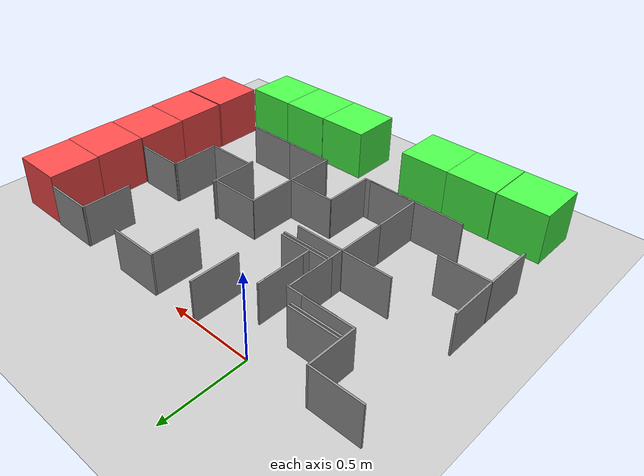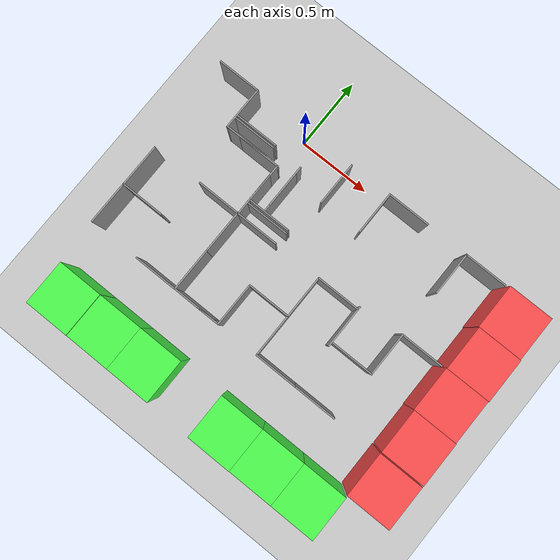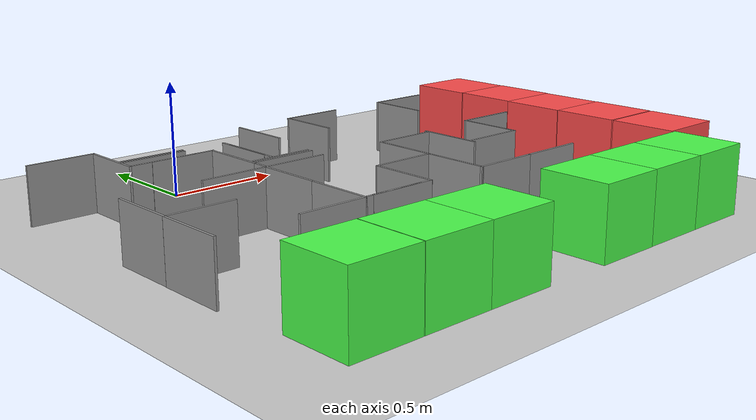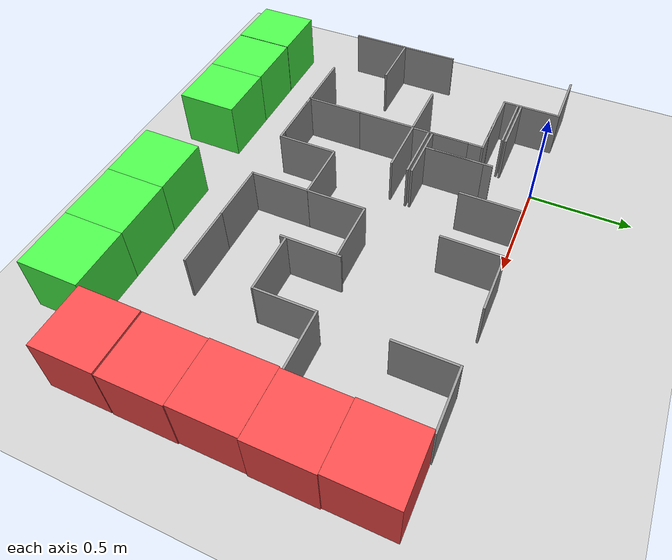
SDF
<sdf version="1.6">
 <world name="default">
  <model name="ground_plane">
   <static>1</static>
   <link name="link">
    <collision name="collision">
     <geometry><plane><normal>0 0 1</normal><size>100 100</size></plane></geometry>
     <surface><friction><ode><mu>100</mu><mu2>50</mu2></ode></friction></surface>
    </collision>
    <visual name="visual">
     <cast_shadows>0</cast_shadows>
     <geometry><plane><normal>0 0 1</normal><size>100 100</size></plane></geometry>
     <material>
      <script><uri>file://media/materials/scripts/gazebo.material</uri><name>Gazebo/Grey</name></script>
     </material>
    </visual>
   </link>
  </model>
  <model name="Box_Red_clone_3">
   <link name="link_0">
    <inertial>
     <mass>1</mass>
     <inertia>
      <ixx>0.166667</ixx>
      <ixy>0</ixy>
      <ixz>0</ixz>
      <iyy>0.166667</iyy>
      <iyz>0</iyz>
      <izz>0.166667</izz>
     </inertia>
    </inertial>
    <visual name="visual">
     <geometry><box><size>0.3 0.3 0.3</size></box></geometry>
     <material>
      <lighting>1</lighting>
      <script><uri>file://media/materials/scripts/gazebo.material</uri><name>Gazebo/Grey</name></script>
      <ambient>1 0.3 0.3 1</ambient>
      <diffuse>0.7 0.7 0.7 1</diffuse>
      <specular>0.01 0.01 0.01 1</specular>
      <emissive>0 0 0 1</emissive>
      <shader type="vertex"><normal_map>__default__</normal_map></shader>
     </material>
    </visual>
    <collision name="collision">
     <geometry><box><size>0.3 0.3 0.3</size></box></geometry>
     <surface>
      <friction>
       <ode><mu>1</mu><mu2>1</mu2><fdir1>0 0 0</fdir1><slip1>0</slip1><slip2>0</slip2></ode>
       <torsional>
        <coefficient>1</coefficient>
        <patch_radius>0</patch_radius>
        <surface_radius>0</surface_radius>
        <use_patch_radius>1</use_patch_radius>
        <ode><slip>0</slip></ode>
       </torsional>
      </friction>
      <bounce><restitution_coefficient>0</restitution_coefficient><threshold>1e+06</threshold></bounce>
      <contact>
       <collide_without_contact>0</collide_without_contact>
       <collide_without_contact_bitmask>1</collide_without_contact_bitmask>
       <collide_bitmask>1</collide_bitmask>
       <ode>
        <soft_cfm>0</soft_cfm>
        <soft_erp>0.2</soft_erp>
        <kp>1e+13</kp>
        <kd>1</kd>
        <max_vel>0.01</max_vel>
        <min_depth>0</min_depth>
       </ode>
       <bullet>
        <split_impulse>1</split_impulse>
        <split_impulse_penetration_threshold>-0.01</split_impulse_penetration_threshold>
        <soft_cfm>0</soft_cfm>
        <soft_erp>0.2</soft_erp>
        <kp>1e+13</kp>
        <kd>1</kd>
       </bullet>
      </contact>
     </surface>
    </collision>
   </link>
   <static>0</static>
   <pose>1.65506 -0.140171 0.15 0 -0 0.000201</pose>
  </model>
  <model name="Box_Red_clone_4">
   <link name="link_0">
    <inertial>
     <mass>1</mass>
     <inertia>
      <ixx>0.166667</ixx>
      <ixy>0</ixy>
      <ixz>0</ixz>
      <iyy>0.166667</iyy>
      <iyz>0</iyz>
      <izz>0.166667</izz>
     </inertia>
    </inertial>
    <visual name="visual">
     <geometry><box><size>0.3 0.3 0.3</size></box></geometry>
     <material>
      <lighting>1</lighting>
      <script><uri>file://media/materials/scripts/gazebo.material</uri><name>Gazebo/Grey</name></script>
      <ambient>1 0.3 0.3 1</ambient>
      <diffuse>0.7 0.7 0.7 1</diffuse>
      <specular>0.01 0.01 0.01 1</specular>
      <emissive>0 0 0 1</emissive>
      <shader type="vertex"><normal_map>__default__</normal_map></shader>
     </material>
    </visual>
    <collision name="collision">
     <geometry><box><size>0.3 0.3 0.3</size></box></geometry>
     <surface>
      <friction>
       <ode><mu>1</mu><mu2>1</mu2><fdir1>0 0 0</fdir1><slip1>0</slip1><slip2>0</slip2></ode>
       <torsional>
        <coefficient>1</coefficient>
        <patch_radius>0</patch_radius>
        <surface_radius>0</surface_radius>
        <use_patch_radius>1</use_patch_radius>
        <ode><slip>0</slip></ode>
       </torsional>
      </friction>
      <bounce><restitution_coefficient>0</restitution_coefficient><threshold>1e+06</threshold></bounce>
      <contact>
       <collide_without_contact>0</collide_without_contact>
       <collide_without_contact_bitmask>1</collide_without_contact_bitmask>
       <collide_bitmask>1</collide_bitmask>
       <ode>
        <soft_cfm>0</soft_cfm>
        <soft_erp>0.2</soft_erp>
        <kp>1e+13</kp>
        <kd>1</kd>
        <max_vel>0.01</max_vel>
        <min_depth>0</min_depth>
       </ode>
       <bullet>
        <split_impulse>1</split_impulse>
        <split_impulse_penetration_threshold>-0.01</split_impulse_penetration_threshold>
        <soft_cfm>0</soft_cfm>
        <soft_erp>0.2</soft_erp>
        <kp>1e+13</kp>
        <kd>1</kd>
       </bullet>
      </contact>
     </surface>
    </collision>
   </link>
   <static>0</static>
   <pose>1.65976 -0.440197 0.15 0 -0 0.000127</pose>
  </model>
  <model name="Box_Red_clone_5">
   <link name="link_0">
    <inertial>
     <mass>1</mass>
     <inertia>
      <ixx>0.166667</ixx>
      <ixy>0</ixy>
      <ixz>0</ixz>
      <iyy>0.166667</iyy>
      <iyz>0</iyz>
      <izz>0.166667</izz>
     </inertia>
    </inertial>
    <visual name="visual">
     <geometry><box><size>0.3 0.3 0.3</size></box></geometry>
     <material>
      <lighting>1</lighting>
      <script><uri>file://media/materials/scripts/gazebo.material</uri><name>Gazebo/Grey</name></script>
      <ambient>1 0.3 0.3 1</ambient>
      <diffuse>0.7 0.7 0.7 1</diffuse>
      <specular>0.01 0.01 0.01 1</specular>
      <emissive>0 0 0 1</emissive>
      <shader type="vertex"><normal_map>__default__</normal_map></shader>
     </material>
    </visual>
    <collision name="collision">
     <geometry><box><size>0.3 0.3 0.3</size></box></geometry>
     <surface>
      <friction>
       <ode><mu>1</mu><mu2>1</mu2><fdir1>0 0 0</fdir1><slip1>0</slip1><slip2>0</slip2></ode>
       <torsional>
        <coefficient>1</coefficient>
        <patch_radius>0</patch_radius>
        <surface_radius>0</surface_radius>
        <use_patch_radius>1</use_patch_radius>
        <ode><slip>0</slip></ode>
       </torsional>
      </friction>
      <bounce><restitution_coefficient>0</restitution_coefficient><threshold>1e+06</threshold></bounce>
      <contact>
       <collide_without_contact>0</collide_without_contact>
       <collide_without_contact_bitmask>1</collide_without_contact_bitmask>
       <collide_bitmask>1</collide_bitmask>
       <ode>
        <soft_cfm>0</soft_cfm>
        <soft_erp>0.2</soft_erp>
        <kp>1e+13</kp>
        <kd>1</kd>
        <max_vel>0.01</max_vel>
        <min_depth>0</min_depth>
       </ode>
       <bullet>
        <split_impulse>1</split_impulse>
        <split_impulse_penetration_threshold>-0.01</split_impulse_penetration_threshold>
        <soft_cfm>0</soft_cfm>
        <soft_erp>0.2</soft_erp>
        <kp>1e+13</kp>
        <kd>1</kd>
       </bullet>
      </contact>
     </surface>
    </collision>
   </link>
   <static>0</static>
   <pose>1.65527 -0.740271 0.15 0 -0 -0.000112</pose>
  </model>
  <model name="Box_Red_clone_6">
   <link name="link_0">
    <inertial>
     <mass>1</mass>
     <inertia>
      <ixx>0.166667</ixx>
      <ixy>0</ixy>
      <ixz>0</ixz>
      <iyy>0.166667</iyy>
      <iyz>0</iyz>
      <izz>0.166667</izz>
     </inertia>
    </inertial>
    <visual name="visual">
     <geometry><box><size>0.3 0.3 0.3</size></box></geometry>
     <material>
      <lighting>1</lighting>
      <script><uri>file://media/materials/scripts/gazebo.material</uri><name>Gazebo/Grey</name></script>
      <ambient>1 0.3 0.3 1</ambient>
      <diffuse>0.7 0.7 0.7 1</diffuse>
      <specular>0.01 0.01 0.01 1</specular>
      <emissive>0 0 0 1</emissive>
      <shader type="vertex"><normal_map>__default__</normal_map></shader>
     </material>
    </visual>
    <collision name="collision">
     <geometry><box><size>0.3 0.3 0.3</size></box></geometry>
     <surface>
      <friction>
       <ode><mu>1</mu><mu2>1</mu2><fdir1>0 0 0</fdir1><slip1>0</slip1><slip2>0</slip2></ode>
       <torsional>
        <coefficient>1</coefficient>
        <patch_radius>0</patch_radius>
        <surface_radius>0</surface_radius>
        <use_patch_radius>1</use_patch_radius>
        <ode><slip>0</slip></ode>
       </torsional>
      </friction>
      <bounce><restitution_coefficient>0</restitution_coefficient><threshold>1e+06</threshold></bounce>
      <contact>
       <collide_without_contact>0</collide_without_contact>
       <collide_without_contact_bitmask>1</collide_without_contact_bitmask>
       <collide_bitmask>1</collide_bitmask>
       <ode>
        <soft_cfm>0</soft_cfm>
        <soft_erp>0.2</soft_erp>
        <kp>1e+13</kp>
        <kd>1</kd>
        <max_vel>0.01</max_vel>
        <min_depth>0</min_depth>
       </ode>
       <bullet>
        <split_impulse>1</split_impulse>
        <split_impulse_penetration_threshold>-0.01</split_impulse_penetration_threshold>
        <soft_cfm>0</soft_cfm>
        <soft_erp>0.2</soft_erp>
        <kp>1e+13</kp>
        <kd>1</kd>
       </bullet>
      </contact>
     </surface>
    </collision>
   </link>
   <static>0</static>
   <pose>1.65902 -1.04031 0.15 0 -0 2.8e-05</pose>
  </model>
  <model name="Box_Red_clone_7">
   <link name="link_0">
    <inertial>
     <mass>1</mass>
     <inertia>
      <ixx>0.166667</ixx>
      <ixy>0</ixy>
      <ixz>0</ixz>
      <iyy>0.166667</iyy>
      <iyz>0</iyz>
      <izz>0.166667</izz>
     </inertia>
    </inertial>
    <visual name="visual">
     <geometry><box><size>0.3 0.3 0.3</size></box></geometry>
     <material>
      <lighting>1</lighting>
      <script><uri>file://media/materials/scripts/gazebo.material</uri><name>Gazebo/Grey</name></script>
      <ambient>1 0.3 0.3 1</ambient>
      <diffuse>0.7 0.7 0.7 1</diffuse>
      <specular>0.01 0.01 0.01 1</specular>
      <emissive>0 0 0 1</emissive>
      <shader type="vertex"><normal_map>__default__</normal_map></shader>
     </material>
    </visual>
    <collision name="collision">
     <geometry><box><size>0.3 0.3 0.3</size></box></geometry>
     <surface>
      <friction>
       <ode><mu>1</mu><mu2>1</mu2><fdir1>0 0 0</fdir1><slip1>0</slip1><slip2>0</slip2></ode>
       <torsional>
        <coefficient>1</coefficient>
        <patch_radius>0</patch_radius>
        <surface_radius>0</surface_radius>
        <use_patch_radius>1</use_patch_radius>
        <ode><slip>0</slip></ode>
       </torsional>
      </friction>
      <bounce><restitution_coefficient>0</restitution_coefficient><threshold>1e+06</threshold></bounce>
      <contact>
       <collide_without_contact>0</collide_without_contact>
       <collide_without_contact_bitmask>1</collide_without_contact_bitmask>
       <collide_bitmask>1</collide_bitmask>
       <ode>
        <soft_cfm>0</soft_cfm>
        <soft_erp>0.2</soft_erp>
        <kp>1e+13</kp>
        <kd>1</kd>
        <max_vel>0.01</max_vel>
        <min_depth>0</min_depth>
       </ode>
       <bullet>
        <split_impulse>1</split_impulse>
        <split_impulse_penetration_threshold>-0.01</split_impulse_penetration_threshold>
        <soft_cfm>0</soft_cfm>
        <soft_erp>0.2</soft_erp>
        <kp>1e+13</kp>
        <kd>1</kd>
       </bullet>
      </contact>
     </surface>
    </collision>
   </link>
   <static>0</static>
   <pose>1.65728 -1.34759 0.15 0 -0 3.8e-05</pose>
  </model>
  <model name="Box_Green">
   <link name="link_0">
    <inertial>
     <mass>1</mass>
     <inertia>
      <ixx>0.166667</ixx>
      <ixy>0</ixy>
      <ixz>0</ixz>
      <iyy>0.166667</iyy>
      <iyz>0</iyz>
      <izz>0.166667</izz>
     </inertia>
    </inertial>
    <visual name="visual">
     <geometry><box><size>0.3 0.3 0.3</size></box></geometry>
     <material>
      <lighting>1</lighting>
      <script><uri>file://media/materials/scripts/gazebo.material</uri><name>Gazebo/Grey</name></script>
      <ambient>0.3 1 0.3 1</ambient>
      <diffuse>0.7 0.7 0.7 1</diffuse>
      <specular>0.01 0.01 0.01 1</specular>
      <emissive>0 0 0 1</emissive>
      <shader type="vertex"><normal_map>__default__</normal_map></shader>
     </material>
    </visual>
    <collision name="collision">
     <geometry><box><size>0.3 0.3 0.3</size></box></geometry>
     <surface>
      <friction>
       <ode><mu>1</mu><mu2>1</mu2><fdir1>0 0 0</fdir1><slip1>0</slip1><slip2>0</slip2></ode>
       <torsional>
        <coefficient>1</coefficient>
        <patch_radius>0</patch_radius>
        <surface_radius>0</surface_radius>
        <use_patch_radius>1</use_patch_radius>
        <ode><slip>0</slip></ode>
       </torsional>
      </friction>
      <bounce><restitution_coefficient>0</restitution_coefficient><threshold>1e+06</threshold></bounce>
      <contact>
       <collide_without_contact>0</collide_without_contact>
       <collide_without_contact_bitmask>1</collide_without_contact_bitmask>
       <collide_bitmask>1</collide_bitmask>
       <ode>
        <soft_cfm>0</soft_cfm>
        <soft_erp>0.2</soft_erp>
        <kp>1e+13</kp>
        <kd>1</kd>
        <max_vel>0.01</max_vel>
        <min_depth>0</min_depth>
       </ode>
       <bullet>
        <split_impulse>1</split_impulse>
        <split_impulse_penetration_threshold>-0.01</split_impulse_penetration_threshold>
        <soft_cfm>0</soft_cfm>
        <soft_erp>0.2</soft_erp>
        <kp>1e+13</kp>
        <kd>1</kd>
       </bullet>
      </contact>
     </surface>
    </collision>
   </link>
   <static>0</static>
   <pose>1.36264 -1.65861 0.15 0 -0 -0.000198</pose>
  </model>
  <model name="Box_Green_clone">
   <link name="link_0">
    <inertial>
     <mass>1</mass>
     <inertia>
      <ixx>0.166667</ixx>
      <ixy>0</ixy>
      <ixz>0</ixz>
      <iyy>0.166667</iyy>
      <iyz>0</iyz>
      <izz>0.166667</izz>
     </inertia>
    </inertial>
    <visual name="visual">
     <geometry><box><size>0.3 0.3 0.3</size></box></geometry>
     <material>
      <lighting>1</lighting>
      <script><uri>file://media/materials/scripts/gazebo.material</uri><name>Gazebo/Grey</name></script>
      <ambient>0.3 1 0.3 1</ambient>
      <diffuse>0.7 0.7 0.7 1</diffuse>
      <specular>0.01 0.01 0.01 1</specular>
      <emissive>0 0 0 1</emissive>
      <shader type="vertex"><normal_map>__default__</normal_map></shader>
     </material>
    </visual>
    <collision name="collision">
     <geometry><box><size>0.3 0.3 0.3</size></box></geometry>
     <surface>
      <friction>
       <ode><mu>1</mu><mu2>1</mu2><fdir1>0 0 0</fdir1><slip1>0</slip1><slip2>0</slip2></ode>
       <torsional>
        <coefficient>1</coefficient>
        <patch_radius>0</patch_radius>
        <surface_radius>0</surface_radius>
        <use_patch_radius>1</use_patch_radius>
        <ode><slip>0</slip></ode>
       </torsional>
      </friction>
      <bounce><restitution_coefficient>0</restitution_coefficient><threshold>1e+06</threshold></bounce>
      <contact>
       <collide_without_contact>0</collide_without_contact>
       <collide_without_contact_bitmask>1</collide_without_contact_bitmask>
       <collide_bitmask>1</collide_bitmask>
       <ode>
        <soft_cfm>0</soft_cfm>
        <soft_erp>0.2</soft_erp>
        <kp>1e+13</kp>
        <kd>1</kd>
        <max_vel>0.01</max_vel>
        <min_depth>0</min_depth>
       </ode>
       <bullet>
        <split_impulse>1</split_impulse>
        <split_impulse_penetration_threshold>-0.01</split_impulse_penetration_threshold>
        <soft_cfm>0</soft_cfm>
        <soft_erp>0.2</soft_erp>
        <kp>1e+13</kp>
        <kd>1</kd>
       </bullet>
      </contact>
     </surface>
    </collision>
   </link>
   <static>0</static>
   <pose>1.06264 -1.65908 0.15 -0 -0 -0.000192</pose>
  </model>
  <model name="Box_Green_clone_0">
   <link name="link_0">
    <inertial>
     <mass>1</mass>
     <inertia>
      <ixx>0.166667</ixx>
      <ixy>0</ixy>
      <ixz>0</ixz>
      <iyy>0.166667</iyy>
      <iyz>0</iyz>
      <izz>0.166667</izz>
     </inertia>
    </inertial>
    <visual name="visual">
     <geometry><box><size>0.3 0.3 0.3</size></box></geometry>
     <material>
      <lighting>1</lighting>
      <script><uri>file://media/materials/scripts/gazebo.material</uri><name>Gazebo/Grey</name></script>
      <ambient>0.3 1 0.3 1</ambient>
      <diffuse>0.7 0.7 0.7 1</diffuse>
      <specular>0.01 0.01 0.01 1</specular>
      <emissive>0 0 0 1</emissive>
      <shader type="vertex"><normal_map>__default__</normal_map></shader>
     </material>
    </visual>
    <collision name="collision">
     <geometry><box><size>0.3 0.3 0.3</size></box></geometry>
     <surface>
      <friction>
       <ode><mu>1</mu><mu2>1</mu2><fdir1>0 0 0</fdir1><slip1>0</slip1><slip2>0</slip2></ode>
       <torsional>
        <coefficient>1</coefficient>
        <patch_radius>0</patch_radius>
        <surface_radius>0</surface_radius>
        <use_patch_radius>1</use_patch_radius>
        <ode><slip>0</slip></ode>
       </torsional>
      </friction>
      <bounce><restitution_coefficient>0</restitution_coefficient><threshold>1e+06</threshold></bounce>
      <contact>
       <collide_without_contact>0</collide_without_contact>
       <collide_without_contact_bitmask>1</collide_without_contact_bitmask>
       <collide_bitmask>1</collide_bitmask>
       <ode>
        <soft_cfm>0</soft_cfm>
        <soft_erp>0.2</soft_erp>
        <kp>1e+13</kp>
        <kd>1</kd>
        <max_vel>0.01</max_vel>
        <min_depth>0</min_depth>
       </ode>
       <bullet>
        <split_impulse>1</split_impulse>
        <split_impulse_penetration_threshold>-0.01</split_impulse_penetration_threshold>
        <soft_cfm>0</soft_cfm>
        <soft_erp>0.2</soft_erp>
        <kp>1e+13</kp>
        <kd>1</kd>
       </bullet>
      </contact>
     </surface>
    </collision>
   </link>
   <static>0</static>
   <pose>0.762626 -1.6603 0.15 0 -0 -0.00019</pose>
  </model>
  <model name="Box_Green_clone_2">
   <link name="link_0">
    <inertial>
     <mass>1</mass>
     <inertia>
      <ixx>0.166667</ixx>
      <ixy>0</ixy>
      <ixz>0</ixz>
      <iyy>0.166667</iyy>
      <iyz>0</iyz>
      <izz>0.166667</izz>
     </inertia>
    </inertial>
    <visual name="visual">
     <geometry><box><size>0.3 0.3 0.3</size></box></geometry>
     <material>
      <lighting>1</lighting>
      <script><uri>file://media/materials/scripts/gazebo.material</uri><name>Gazebo/Grey</name></script>
      <ambient>0.3 1 0.3 1</ambient>
      <diffuse>0.7 0.7 0.7 1</diffuse>
      <specular>0.01 0.01 0.01 1</specular>
      <emissive>0 0 0 1</emissive>
      <shader type="vertex"><normal_map>__default__</normal_map></shader>
     </material>
    </visual>
    <collision name="collision">
     <geometry><box><size>0.3 0.3 0.3</size></box></geometry>
     <surface>
      <friction>
       <ode><mu>1</mu><mu2>1</mu2><fdir1>0 0 0</fdir1><slip1>0</slip1><slip2>0</slip2></ode>
       <torsional>
        <coefficient>1</coefficient>
        <patch_radius>0</patch_radius>
        <surface_radius>0</surface_radius>
        <use_patch_radius>1</use_patch_radius>
        <ode><slip>0</slip></ode>
       </torsional>
      </friction>
      <bounce><restitution_coefficient>0</restitution_coefficient><threshold>1e+06</threshold></bounce>
      <contact>
       <collide_without_contact>0</collide_without_contact>
       <collide_without_contact_bitmask>1</collide_without_contact_bitmask>
       <collide_bitmask>1</collide_bitmask>
       <ode>
        <soft_cfm>0</soft_cfm>
        <soft_erp>0.2</soft_erp>
        <kp>1e+13</kp>
        <kd>1</kd>
        <max_vel>0.01</max_vel>
        <min_depth>0</min_depth>
       </ode>
       <bullet>
        <split_impulse>1</split_impulse>
        <split_impulse_penetration_threshold>-0.01</split_impulse_penetration_threshold>
        <soft_cfm>0</soft_cfm>
        <soft_erp>0.2</soft_erp>
        <kp>1e+13</kp>
        <kd>1</kd>
       </bullet>
      </contact>
     </surface>
    </collision>
   </link>
   <static>0</static>
   <pose>0.162354 -1.65755 0.15 0 -0 -0.000187</pose>
  </model>
  <model name="Box_Green_clone_4">
   <link name="link_0">
    <inertial>
     <mass>1</mass>
     <inertia>
      <ixx>0.166667</ixx>
      <ixy>0</ixy>
      <ixz>0</ixz>
      <iyy>0.166667</iyy>
      <iyz>0</iyz>
      <izz>0.166667</izz>
     </inertia>
    </inertial>
    <visual name="visual">
     <geometry><box><size>0.3 0.3 0.3</size></box></geometry>
     <material>
      <lighting>1</lighting>
      <script><uri>file://media/materials/scripts/gazebo.material</uri><name>Gazebo/Grey</name></script>
      <ambient>0.3 1 0.3 1</ambient>
      <diffuse>0.7 0.7 0.7 1</diffuse>
      <specular>0.01 0.01 0.01 1</specular>
      <emissive>0 0 0 1</emissive>
      <shader type="vertex"><normal_map>__default__</normal_map></shader>
     </material>
    </visual>
    <collision name="collision">
     <geometry><box><size>0.3 0.3 0.3</size></box></geometry>
     <surface>
      <friction>
       <ode><mu>1</mu><mu2>1</mu2><fdir1>0 0 0</fdir1><slip1>0</slip1><slip2>0</slip2></ode>
       <torsional>
        <coefficient>1</coefficient>
        <patch_radius>0</patch_radius>
        <surface_radius>0</surface_radius>
        <use_patch_radius>1</use_patch_radius>
        <ode><slip>0</slip></ode>
       </torsional>
      </friction>
      <bounce><restitution_coefficient>0</restitution_coefficient><threshold>1e+06</threshold></bounce>
      <contact>
       <collide_without_contact>0</collide_without_contact>
       <collide_without_contact_bitmask>1</collide_without_contact_bitmask>
       <collide_bitmask>1</collide_bitmask>
       <ode>
        <soft_cfm>0</soft_cfm>
        <soft_erp>0.2</soft_erp>
        <kp>1e+13</kp>
        <kd>1</kd>
        <max_vel>0.01</max_vel>
        <min_depth>0</min_depth>
       </ode>
       <bullet>
        <split_impulse>1</split_impulse>
        <split_impulse_penetration_threshold>-0.01</split_impulse_penetration_threshold>
        <soft_cfm>0</soft_cfm>
        <soft_erp>0.2</soft_erp>
        <kp>1e+13</kp>
        <kd>1</kd>
       </bullet>
      </contact>
     </surface>
    </collision>
   </link>
   <static>0</static>
   <pose>-0.440485 -1.65793 0.15 0 -0 -6.7e-05</pose>
  </model>
  <model name="Maze_L_LB_clone">
   <pose>1.35035 -0.132332 0 0 -0 0</pose>
   <link name="Wall_0">
    <collision name="Wall_0_Collision">
     <geometry><box><size>0.294 0.01 0.25</size></box></geometry>
     <pose>0 0 0.125 0 -0 0</pose>
    </collision>
    <visual name="Wall_0_Visual">
     <pose>0 0 0.125 0 -0 0</pose>
     <geometry><box><size>0.294 0.01 0.25</size></box></geometry>
     <material>
      <script><uri>file://media/materials/scripts/gazebo.material</uri><name>Gazebo/Grey</name></script>
      <ambient>1 1 1 1</ambient>
     </material>
     <meta><layer>0</layer></meta>
    </visual>
    <pose>0 0.142 0 0 -0 0</pose>
   </link>
   <link name="Wall_2">
    <collision name="Wall_2_Collision">
     <geometry><box><size>0.294 0.01 0.25</size></box></geometry>
     <pose>0 0 0.125 0 -0 0</pose>
    </collision>
    <visual name="Wall_2_Visual">
     <pose>0 0 0.125 0 -0 0</pose>
     <geometry><box><size>0.294 0.01 0.25</size></box></geometry>
     <material>
      <script><uri>file://media/materials/scripts/gazebo.material</uri><name>Gazebo/Grey</name></script>
      <ambient>1 1 1 1</ambient>
     </material>
     <meta><layer>0</layer></meta>
    </visual>
    <pose>-0.142 0 0 0 0 -1.5708</pose>
   </link>
   <static>1</static>
  </model>
  <model name="Maze_L_LB_clone_0">
   <pose>0.778988 -0.132321 0 0 -0 0</pose>
   <link name="Wall_0">
    <collision name="Wall_0_Collision">
     <geometry><box><size>0.294 0.01 0.25</size></box></geometry>
     <pose>0 0 0.125 0 -0 0</pose>
    </collision>
    <visual name="Wall_0_Visual">
     <pose>0 0 0.125 0 -0 0</pose>
     <geometry><box><size>0.294 0.01 0.25</size></box></geometry>
     <material>
      <script><uri>file://media/materials/scripts/gazebo.material</uri><name>Gazebo/Grey</name></script>
      <ambient>1 1 1 1</ambient>
     </material>
     <meta><layer>0</layer></meta>
    </visual>
    <pose>0 0.142 0 0 -0 0</pose>
   </link>
   <link name="Wall_2">
    <collision name="Wall_2_Collision">
     <geometry><box><size>0.294 0.01 0.25</size></box></geometry>
     <pose>0 0 0.125 0 -0 0</pose>
    </collision>
    <visual name="Wall_2_Visual">
     <pose>0 0 0.125 0 -0 0</pose>
     <geometry><box><size>0.294 0.01 0.25</size></box></geometry>
     <material>
      <script><uri>file://media/materials/scripts/gazebo.material</uri><name>Gazebo/Grey</name></script>
      <ambient>1 1 1 1</ambient>
     </material>
     <meta><layer>0</layer></meta>
    </visual>
    <pose>-0.142 0 0 0 0 -1.5708</pose>
   </link>
   <static>1</static>
  </model>
  <model name="Maze_L_LB_clone_1">
   <pose>1.34781 -0.734464 0 0 -0 0</pose>
   <link name="Wall_0">
    <collision name="Wall_0_Collision">
     <geometry><box><size>0.294 0.01 0.25</size></box></geometry>
     <pose>0 0 0.125 0 -0 0</pose>
    </collision>
    <visual name="Wall_0_Visual">
     <pose>0 0 0.125 0 -0 0</pose>
     <geometry><box><size>0.294 0.01 0.25</size></box></geometry>
     <material>
      <script><uri>file://media/materials/scripts/gazebo.material</uri><name>Gazebo/Grey</name></script>
      <ambient>1 1 1 1</ambient>
     </material>
     <meta><layer>0</layer></meta>
    </visual>
    <pose>0 0.142 0 0 -0 0</pose>
   </link>
   <link name="Wall_2">
    <collision name="Wall_2_Collision">
     <geometry><box><size>0.294 0.01 0.25</size></box></geometry>
     <pose>0 0 0.125 0 -0 0</pose>
    </collision>
    <visual name="Wall_2_Visual">
     <pose>0 0 0.125 0 -0 0</pose>
     <geometry><box><size>0.294 0.01 0.25</size></box></geometry>
     <material>
      <script><uri>file://media/materials/scripts/gazebo.material</uri><name>Gazebo/Grey</name></script>
      <ambient>1 1 1 1</ambient>
     </material>
     <meta><layer>0</layer></meta>
    </visual>
    <pose>-0.142 0 0 0 0 -1.5708</pose>
   </link>
   <static>1</static>
  </model>
  <model name="Maze_I_V_clone">
   <pose>1.06361 -0.883251 0 0 -0 0</pose>
   <link name="Wall_0">
    <collision name="Wall_0_Collision">
     <geometry><box><size>0.294 0.01 0.25</size></box></geometry>
     <pose>0 0 0.125 0 -0 0</pose>
    </collision>
    <visual name="Wall_0_Visual">
     <pose>0 0 0.125 0 -0 0</pose>
     <geometry><box><size>0.294 0.01 0.25</size></box></geometry>
     <material>
      <script><uri>file://media/materials/scripts/gazebo.material</uri><name>Gazebo/Grey</name></script>
      <ambient>1 1 1 1</ambient>
     </material>
     <meta><layer>0</layer></meta>
    </visual>
   </link>
   <static>1</static>
  </model>
  <model name="Maze_L_RB_clone_2">
   <pose>0.763598 -1.0726 0 0 -0 0</pose>
   <link name="Wall_0">
    <collision name="Wall_0_Collision">
     <geometry><box><size>0.294 0.01 0.25</size></box></geometry>
     <pose>0 0 0.125 0 -0 0</pose>
    </collision>
    <visual name="Wall_0_Visual">
     <pose>0 0 0.125 0 -0 0</pose>
     <geometry><box><size>0.294 0.01 0.25</size></box></geometry>
     <material>
      <script><uri>file://media/materials/scripts/gazebo.material</uri><name>Gazebo/Grey</name></script>
      <ambient>1 1 1 1</ambient>
     </material>
     <meta><layer>0</layer></meta>
    </visual>
    <pose>0 -0.142 0 0 -0 0</pose>
   </link>
   <link name="Wall_2">
    <collision name="Wall_2_Collision">
     <geometry><box><size>0.294 0.01 0.25</size></box></geometry>
     <pose>0 0 0.125 0 -0 0</pose>
    </collision>
    <visual name="Wall_2_Visual">
     <pose>0 0 0.125 0 -0 0</pose>
     <geometry><box><size>0.294 0.01 0.25</size></box></geometry>
     <material>
      <script><uri>file://media/materials/scripts/gazebo.material</uri><name>Gazebo/Grey</name></script>
      <ambient>1 1 1 1</ambient>
     </material>
     <meta><layer>0</layer></meta>
    </visual>
    <pose>-0.142 0 0 0 -0 1.5708</pose>
   </link>
   <static>1</static>
  </model>
  <model name="Maze_L_RU_clone">
   <pose>0.479452 -0.784371 0 0 -0 0</pose>
   <link name="Wall_11">
    <collision name="Wall_11_Collision">
     <geometry><box><size>0.294 0.01 0.25</size></box></geometry>
     <pose>0 0 0.125 0 -0 0</pose>
    </collision>
    <visual name="Wall_11_Visual">
     <pose>0 0 0.125 0 -0 0</pose>
     <geometry><box><size>0.294 0.01 0.25</size></box></geometry>
     <material>
      <script><uri>file://media/materials/scripts/gazebo.material</uri><name>Gazebo/Grey</name></script>
      <ambient>1 1 1 1</ambient>
     </material>
     <meta><layer>0</layer></meta>
    </visual>
    <pose>0 -0.142 0 0 -0 0</pose>
   </link>
   <link name="Wall_12">
    <collision name="Wall_12_Collision">
     <geometry><box><size>0.294 0.01 0.25</size></box></geometry>
     <pose>0 0 0.125 0 -0 0</pose>
    </collision>
    <visual name="Wall_12_Visual">
     <pose>0 0 0.125 0 -0 0</pose>
     <geometry><box><size>0.294 0.01 0.25</size></box></geometry>
     <material>
      <script><uri>file://media/materials/scripts/gazebo.material</uri><name>Gazebo/Grey</name></script>
      <ambient>1 1 1 1</ambient>
     </material>
     <meta><layer>0</layer></meta>
    </visual>
    <pose>0.142 0 0 0 -0 1.5708</pose>
   </link>
   <static>1</static>
  </model>
  <model name="Maze_I_V_clone_0">
   <pose>0.765722 -0.640246 0 0 -0 0</pose>
   <link name="Wall_0">
    <collision name="Wall_0_Collision">
     <geometry><box><size>0.294 0.01 0.25</size></box></geometry>
     <pose>0 0 0.125 0 -0 0</pose>
    </collision>
    <visual name="Wall_0_Visual">
     <pose>0 0 0.125 0 -0 0</pose>
     <geometry><box><size>0.294 0.01 0.25</size></box></geometry>
     <material>
      <script><uri>file://media/materials/scripts/gazebo.material</uri><name>Gazebo/Grey</name></script>
      <ambient>1 1 1 1</ambient>
     </material>
     <meta><layer>0</layer></meta>
    </visual>
   </link>
   <static>1</static>
  </model>
  <model name="Maze_L_RB_clone_3">
   <pose>0.15218 -1.07427 0 0 -0 0</pose>
   <link name="Wall_0">
    <collision name="Wall_0_Collision">
     <geometry><box><size>0.294 0.01 0.25</size></box></geometry>
     <pose>0 0 0.125 0 -0 0</pose>
    </collision>
    <visual name="Wall_0_Visual">
     <pose>0 0 0.125 0 -0 0</pose>
     <geometry><box><size>0.294 0.01 0.25</size></box></geometry>
     <material>
      <script><uri>file://media/materials/scripts/gazebo.material</uri><name>Gazebo/Grey</name></script>
      <ambient>1 1 1 1</ambient>
     </material>
     <meta><layer>0</layer></meta>
    </visual>
    <pose>0 -0.142 0 0 -0 0</pose>
   </link>
   <link name="Wall_2">
    <collision name="Wall_2_Collision">
     <geometry><box><size>0.294 0.01 0.25</size></box></geometry>
     <pose>0 0 0.125 0 -0 0</pose>
    </collision>
    <visual name="Wall_2_Visual">
     <pose>0 0 0.125 0 -0 0</pose>
     <geometry><box><size>0.294 0.01 0.25</size></box></geometry>
     <material>
      <script><uri>file://media/materials/scripts/gazebo.material</uri><name>Gazebo/Grey</name></script>
      <ambient>1 1 1 1</ambient>
     </material>
     <meta><layer>0</layer></meta>
    </visual>
    <pose>-0.142 0 0 0 -0 1.5708</pose>
   </link>
   <static>1</static>
  </model>
  <model name="Maze_L_LB_clone_3">
   <pose>0.152592 -0.783376 0 0 -0 0</pose>
   <link name="Wall_0">
    <collision name="Wall_0_Collision">
     <geometry><box><size>0.294 0.01 0.25</size></box></geometry>
     <pose>0 0 0.125 0 -0 0</pose>
    </collision>
    <visual name="Wall_0_Visual">
     <pose>0 0 0.125 0 -0 0</pose>
     <geometry><box><size>0.294 0.01 0.25</size></box></geometry>
     <material>
      <script><uri>file://media/materials/scripts/gazebo.material</uri><name>Gazebo/Grey</name></script>
      <ambient>1 1 1 1</ambient>
     </material>
     <meta><layer>0</layer></meta>
    </visual>
    <pose>0 0.142 0 0 -0 0</pose>
   </link>
   <link name="Wall_2">
    <collision name="Wall_2_Collision">
     <geometry><box><size>0.294 0.01 0.25</size></box></geometry>
     <pose>0 0 0.125 0 -0 0</pose>
    </collision>
    <visual name="Wall_2_Visual">
     <pose>0 0 0.125 0 -0 0</pose>
     <geometry><box><size>0.294 0.01 0.25</size></box></geometry>
     <material>
      <script><uri>file://media/materials/scripts/gazebo.material</uri><name>Gazebo/Grey</name></script>
      <ambient>1 1 1 1</ambient>
     </material>
     <meta><layer>0</layer></meta>
    </visual>
    <pose>-0.142 0 0 0 0 -1.5708</pose>
   </link>
   <static>1</static>
  </model>
  <model name="Maze_I_V_clone_1">
   <pose>-0.135618 -0.641445 0 0 -0 0</pose>
   <link name="Wall_0">
    <collision name="Wall_0_Collision">
     <geometry><box><size>0.294 0.01 0.25</size></box></geometry>
     <pose>0 0 0.125 0 -0 0</pose>
    </collision>
    <visual name="Wall_0_Visual">
     <pose>0 0 0.125 0 -0 0</pose>
     <geometry><box><size>0.294 0.01 0.25</size></box></geometry>
     <material>
      <script><uri>file://media/materials/scripts/gazebo.material</uri><name>Gazebo/Grey</name></script>
      <ambient>1 1 1 1</ambient>
     </material>
     <meta><layer>0</layer></meta>
    </visual>
   </link>
   <static>1</static>
  </model>
  <model name="Maze_L_RB_clone_4">
   <pose>-0.481784 -0.788673 0 0 -0 0</pose>
   <link name="Wall_0">
    <collision name="Wall_0_Collision">
     <geometry><box><size>0.294 0.01 0.25</size></box></geometry>
     <pose>0 0 0.125 0 -0 0</pose>
    </collision>
    <visual name="Wall_0_Visual">
     <pose>0 0 0.125 0 -0 0</pose>
     <geometry><box><size>0.294 0.01 0.25</size></box></geometry>
     <material>
      <script><uri>file://media/materials/scripts/gazebo.material</uri><name>Gazebo/Grey</name></script>
      <ambient>1 1 1 1</ambient>
     </material>
     <meta><layer>0</layer></meta>
    </visual>
    <pose>0 -0.142 0 0 -0 0</pose>
   </link>
   <link name="Wall_2">
    <collision name="Wall_2_Collision">
     <geometry><box><size>0.294 0.01 0.25</size></box></geometry>
     <pose>0 0 0.125 0 -0 0</pose>
    </collision>
    <visual name="Wall_2_Visual">
     <pose>0 0 0.125 0 -0 0</pose>
     <geometry><box><size>0.294 0.01 0.25</size></box></geometry>
     <material>
      <script><uri>file://media/materials/scripts/gazebo.material</uri><name>Gazebo/Grey</name></script>
      <ambient>1 1 1 1</ambient>
     </material>
     <meta><layer>0</layer></meta>
    </visual>
    <pose>-0.142 0 0 0 -0 1.5708</pose>
   </link>
   <static>1</static>
  </model>
  <model name="Maze_I_H_clone_7">
   <pose>-0.624759 -1.07457 0 0 -0 0</pose>
   <link name="Wall_0">
    <collision name="Wall_0_Collision">
     <geometry><box><size>0.294 0.01 0.25</size></box></geometry>
     <pose>0 0 0.125 0 -0 0</pose>
    </collision>
    <visual name="Wall_0_Visual">
     <pose>0 0 0.125 0 -0 0</pose>
     <geometry><box><size>0.294 0.01 0.25</size></box></geometry>
     <material>
      <script><uri>file://media/materials/scripts/gazebo.material</uri><name>Gazebo/Grey</name></script>
      <ambient>1 1 1 1</ambient>
     </material>
     <meta><layer>0</layer></meta>
    </visual>
    <pose>0 0 0 0 -0 1.5708</pose>
   </link>
   <static>1</static>
  </model>
  <model name="Maze_I_H_clone_4_clone_0">
   <pose>0.352849 -0.138896 0 0 -0 0</pose>
   <link name="Wall_0">
    <collision name="Wall_0_Collision">
     <geometry><box><size>0.294 0.01 0.25</size></box></geometry>
     <pose>0 0 0.125 0 -0 0</pose>
    </collision>
    <visual name="Wall_0_Visual">
     <pose>0 0 0.125 0 -0 0</pose>
     <geometry><box><size>0.294 0.01 0.25</size></box></geometry>
     <material>
      <script><uri>file://media/materials/scripts/gazebo.material</uri><name>Gazebo/Grey</name></script>
      <ambient>1 1 1 1</ambient>
     </material>
     <meta><layer>0</layer></meta>
    </visual>
    <pose>0 0 0 0 -0 1.5708</pose>
   </link>
   <static>1</static>
  </model>
  <model name="Maze_L_LU_clone_0_clone">
   <pose>-0.512012 -0.132715 0 0 -0 0</pose>
   <link name="Wall_0">
    <collision name="Wall_0_Collision">
     <geometry><box><size>0.294 0.01 0.25</size></box></geometry>
     <pose>0 0 0.125 0 -0 0</pose>
    </collision>
    <visual name="Wall_0_Visual">
     <pose>0 0 0.125 0 -0 0</pose>
     <geometry><box><size>0.294 0.01 0.25</size></box></geometry>
     <material>
      <script><uri>file://media/materials/scripts/gazebo.material</uri><name>Gazebo/Grey</name></script>
      <ambient>1 1 1 1</ambient>
     </material>
     <meta><layer>0</layer></meta>
    </visual>
    <pose>0 0.142 0 0 -0 3.14159</pose>
   </link>
   <link name="Wall_2">
    <collision name="Wall_2_Collision">
     <geometry><box><size>0.294 0.01 0.25</size></box></geometry>
     <pose>0 0 0.125 0 -0 0</pose>
    </collision>
    <visual name="Wall_2_Visual">
     <pose>0 0 0.125 0 -0 0</pose>
     <geometry><box><size>0.294 0.01 0.25</size></box></geometry>
     <material>
      <script><uri>file://media/materials/scripts/gazebo.material</uri><name>Gazebo/Grey</name></script>
      <ambient>1 1 1 1</ambient>
     </material>
     <meta><layer>0</layer></meta>
    </visual>
    <pose>0.142 0 0 0 0 -1.5708</pose>
   </link>
   <static>1</static>
  </model>
  <model name="Maze_I_H_clone_3_clone_1">
   <pose>0.013643 -0.420884 0 0 -0 0</pose>
   <link name="Wall_0">
    <collision name="Wall_0_Collision">
     <geometry><box><size>0.294 0.01 0.25</size></box></geometry>
     <pose>0 0 0.125 0 -0 0</pose>
    </collision>
    <visual name="Wall_0_Visual">
     <pose>0 0 0.125 0 -0 0</pose>
     <geometry><box><size>0.294 0.01 0.25</size></box></geometry>
     <material>
      <script><uri>file://media/materials/scripts/gazebo.material</uri><name>Gazebo/Grey</name></script>
      <ambient>1 1 1 1</ambient>
     </material>
     <meta><layer>0</layer></meta>
    </visual>
    <pose>0 0 0 0 -0 1.5708</pose>
   </link>
   <static>1</static>
  </model>
  <model name="Maze_I_V_clone_3_clone_0">
   <pose>-0.219439 -0.274332 0 0 -0 0</pose>
   <link name="Wall_0">
    <collision name="Wall_0_Collision">
     <geometry><box><size>0.294 0.01 0.25</size></box></geometry>
     <pose>0 0 0.125 0 -0 0</pose>
    </collision>
    <visual name="Wall_0_Visual">
     <pose>0 0 0.125 0 -0 0</pose>
     <geometry><box><size>0.294 0.01 0.25</size></box></geometry>
     <material>
      <script><uri>file://media/materials/scripts/gazebo.material</uri><name>Gazebo/Grey</name></script>
      <ambient>1 1 1 1</ambient>
     </material>
     <meta><layer>0</layer></meta>
    </visual>
   </link>
   <static>1</static>
  </model>
  <model name="Maze_I_V_clone_3_clone_1">
   <pose>-0.126423 -0.275475 0 0 -0 0</pose>
   <link name="Wall_0">
    <collision name="Wall_0_Collision">
     <geometry><box><size>0.294 0.01 0.25</size></box></geometry>
     <pose>0 0 0.125 0 -0 0</pose>
    </collision>
    <visual name="Wall_0_Visual">
     <pose>0 0 0.125 0 -0 0</pose>
     <geometry><box><size>0.294 0.01 0.25</size></box></geometry>
     <material>
      <script><uri>file://media/materials/scripts/gazebo.material</uri><name>Gazebo/Grey</name></script>
      <ambient>1 1 1 1</ambient>
     </material>
     <meta><layer>0</layer></meta>
    </visual>
   </link>
   <static>1</static>
  </model>
  <model name="Maze_I_H_clone_3_clone_1_clone">
   <pose>0.013943 -0.49563 0 0 -0 0</pose>
   <link name="Wall_0">
    <collision name="Wall_0_Collision">
     <geometry><box><size>0.294 0.01 0.25</size></box></geometry>
     <pose>0 0 0.125 0 -0 0</pose>
    </collision>
    <visual name="Wall_0_Visual">
     <pose>0 0 0.125 0 -0 0</pose>
     <geometry><box><size>0.294 0.01 0.25</size></box></geometry>
     <material>
      <script><uri>file://media/materials/scripts/gazebo.material</uri><name>Gazebo/Grey</name></script>
      <ambient>1 1 1 1</ambient>
     </material>
     <meta><layer>0</layer></meta>
    </visual>
    <pose>0 0 0 0 -0 1.5708</pose>
   </link>
   <static>1</static>
  </model>
  <model name="Maze_I_V_clone_1_clone_0">
   <pose>-0.139246 -1.21732 0 0 -0 0</pose>
   <link name="Wall_0">
    <collision name="Wall_0_Collision">
     <geometry><box><size>0.294 0.01 0.25</size></box></geometry>
     <pose>0 0 0.125 0 -0 0</pose>
    </collision>
    <visual name="Wall_0_Visual">
     <pose>0 0 0.125 0 -0 0</pose>
     <geometry><box><size>0.294 0.01 0.25</size></box></geometry>
     <material>
      <script><uri>file://media/materials/scripts/gazebo.material</uri><name>Gazebo/Grey</name></script>
      <ambient>1 1 1 1</ambient>
     </material>
     <meta><layer>0</layer></meta>
    </visual>
   </link>
   <static>1</static>
  </model>
  <model name="Maze_I_H_clone_4_clone_0_clone">
   <pose>0.335741 -1.0742 0 0 -0 0</pose>
   <link name="Wall_0">
    <collision name="Wall_0_Collision">
     <geometry><box><size>0.294 0.01 0.25</size></box></geometry>
     <pose>0 0 0.125 0 -0 0</pose>
    </collision>
    <visual name="Wall_0_Visual">
     <pose>0 0 0.125 0 -0 0</pose>
     <geometry><box><size>0.294 0.01 0.25</size></box></geometry>
     <material>
      <script><uri>file://media/materials/scripts/gazebo.material</uri><name>Gazebo/Grey</name></script>
      <ambient>1 1 1 1</ambient>
     </material>
     <meta><layer>0</layer></meta>
    </visual>
    <pose>0 0 0 0 -0 1.5708</pose>
   </link>
   <static>1</static>
  </model>
  <model name="Maze_I_H_clone_4_clone_0_clone_0">
   <pose>0.913343 -0.7665 0 0 -0 0</pose>
   <link name="Wall_0">
    <collision name="Wall_0_Collision">
     <geometry><box><size>0.294 0.01 0.25</size></box></geometry>
     <pose>0 0 0.125 0 -0 0</pose>
    </collision>
    <visual name="Wall_0_Visual">
     <pose>0 0 0.125 0 -0 0</pose>
     <geometry><box><size>0.294 0.01 0.25</size></box></geometry>
     <material>
      <script><uri>file://media/materials/scripts/gazebo.material</uri><name>Gazebo/Grey</name></script>
      <ambient>1 1 1 1</ambient>
     </material>
     <meta><layer>0</layer></meta>
    </visual>
    <pose>0 0 0 0 -0 1.5708</pose>
   </link>
   <static>1</static>
  </model>
  <model name="Maze_I_V_clone_1_clone_0_clone">
   <pose>0.192645 -1.21668 0 0 -0 0</pose>
   <link name="Wall_0">
    <collision name="Wall_0_Collision">
     <geometry><box><size>0.294 0.01 0.25</size></box></geometry>
     <pose>0 0 0.125 0 -0 0</pose>
    </collision>
    <visual name="Wall_0_Visual">
     <pose>0 0 0.125 0 -0 0</pose>
     <geometry><box><size>0.294 0.01 0.25</size></box></geometry>
     <material>
      <script><uri>file://media/materials/scripts/gazebo.material</uri><name>Gazebo/Grey</name></script>
      <ambient>1 1 1 1</ambient>
     </material>
     <meta><layer>0</layer></meta>
    </visual>
   </link>
   <static>1</static>
  </model>
  <model name="Maze_I_V_clone_1_clone_0_clone_0">
   <pose>1.05168 -1.21426 0 0 -0 0</pose>
   <link name="Wall_0">
    <collision name="Wall_0_Collision">
     <geometry><box><size>0.294 0.01 0.25</size></box></geometry>
     <pose>0 0 0.125 0 -0 0</pose>
    </collision>
    <visual name="Wall_0_Visual">
     <pose>0 0 0.125 0 -0 0</pose>
     <geometry><box><size>0.294 0.01 0.25</size></box></geometry>
     <material>
      <script><uri>file://media/materials/scripts/gazebo.material</uri><name>Gazebo/Grey</name></script>
      <ambient>1 1 1 1</ambient>
     </material>
     <meta><layer>0</layer></meta>
    </visual>
   </link>
   <static>1</static>
  </model>
  <model name="Maze_I_V_clone_3_clone_0_clone">
   <pose>-0.220446 -0.203001 0 0 -0 0</pose>
   <link name="Wall_0">
    <collision name="Wall_0_Collision">
     <geometry><box><size>0.294 0.01 0.25</size></box></geometry>
     <pose>0 0 0.125 0 -0 0</pose>
    </collision>
    <visual name="Wall_0_Visual">
     <pose>0 0 0.125 0 -0 0</pose>
     <geometry><box><size>0.294 0.01 0.25</size></box></geometry>
     <material>
      <script><uri>file://media/materials/scripts/gazebo.material</uri><name>Gazebo/Grey</name></script>
      <ambient>1 1 1 1</ambient>
     </material>
     <meta><layer>0</layer></meta>
    </visual>
   </link>
   <static>1</static>
  </model>
  <model name="Maze_I_V_clone_3_clone_0_clone_1">
   <pose>-0.217066 -0.184841 0 0 -0 0</pose>
   <link name="Wall_0">
    <collision name="Wall_0_Collision">
     <geometry><box><size>0.294 0.01 0.25</size></box></geometry>
     <pose>0 0 0.125 0 -0 0</pose>
    </collision>
    <visual name="Wall_0_Visual">
     <pose>0 0 0.125 0 -0 0</pose>
     <geometry><box><size>0.294 0.01 0.25</size></box></geometry>
     <material>
      <script><uri>file://media/materials/scripts/gazebo.material</uri><name>Gazebo/Grey</name></script>
      <ambient>1 1 1 1</ambient>
     </material>
     <meta><layer>0</layer></meta>
    </visual>
   </link>
   <static>1</static>
  </model>
  <model name="Maze_I_V_clone_3_clone_0_clone_2">
   <pose>0.16168 -0.534812 0 0 -0 0</pose>
   <link name="Wall_0">
    <collision name="Wall_0_Collision">
     <geometry><box><size>0.294 0.01 0.25</size></box></geometry>
     <pose>0 0 0.125 0 -0 0</pose>
    </collision>
    <visual name="Wall_0_Visual">
     <pose>0 0 0.125 0 -0 0</pose>
     <geometry><box><size>0.294 0.01 0.25</size></box></geometry>
     <material>
      <script><uri>file://media/materials/scripts/gazebo.material</uri><name>Gazebo/Grey</name></script>
      <ambient>1 1 1 1</ambient>
     </material>
     <meta><layer>0</layer></meta>
    </visual>
   </link>
   <static>1</static>
  </model>
  <model name="Maze_I_V_clone_3_clone_0_clone_3">
   <pose>0.164135 -0.555699 0 0 -0 0</pose>
   <link name="Wall_0">
    <collision name="Wall_0_Collision">
     <geometry><box><size>0.294 0.01 0.25</size></box></geometry>
     <pose>0 0 0.125 0 -0 0</pose>
    </collision>
    <visual name="Wall_0_Visual">
     <pose>0 0 0.125 0 -0 0</pose>
     <geometry><box><size>0.294 0.01 0.25</size></box></geometry>
     <material>
      <script><uri>file://media/materials/scripts/gazebo.material</uri><name>Gazebo/Grey</name></script>
      <ambient>1 1 1 1</ambient>
     </material>
     <meta><layer>0</layer></meta>
    </visual>
   </link>
   <static>1</static>
  </model>
  <model name="Maze_I_H_clone_4_clone_0_clone_3">
   <pose>0.125425 -0.383964 0 0 -0 0</pose>
   <link name="Wall_0">
    <collision name="Wall_0_Collision">
     <geometry><box><size>0.294 0.01 0.25</size></box></geometry>
     <pose>0 0 0.125 0 -0 0</pose>
    </collision>
    <visual name="Wall_0_Visual">
     <pose>0 0 0.125 0 -0 0</pose>
     <geometry><box><size>0.294 0.01 0.25</size></box></geometry>
     <material>
      <script><uri>file://media/materials/scripts/gazebo.material</uri><name>Gazebo/Grey</name></script>
      <ambient>1 1 1 1</ambient>
     </material>
     <meta><layer>0</layer></meta>
    </visual>
    <pose>0 0 0 0 -0 1.5708</pose>
   </link>
   <static>1</static>
  </model>
  <model name="Maze_I_H_clone_4_clone_0_clone_4">
   <pose>0.12506 -0.339428 0 0 -0 0</pose>
   <link name="Wall_0">
    <collision name="Wall_0_Collision">
     <geometry><box><size>0.294 0.01 0.25</size></box></geometry>
     <pose>0 0 0.125 0 -0 0</pose>
    </collision>
    <visual name="Wall_0_Visual">
     <pose>0 0 0.125 0 -0 0</pose>
     <geometry><box><size>0.294 0.01 0.25</size></box></geometry>
     <material>
      <script><uri>file://media/materials/scripts/gazebo.material</uri><name>Gazebo/Grey</name></script>
      <ambient>1 1 1 1</ambient>
     </material>
     <meta><layer>0</layer></meta>
    </visual>
    <pose>0 0 0 0 -0 1.5708</pose>
   </link>
   <static>1</static>
  </model>
  <model name="Box_Green_clone_1_clone">
   <link name="link_0">
    <inertial>
     <mass>1</mass>
     <inertia>
      <ixx>0.166667</ixx>
      <ixy>0</ixy>
      <ixz>0</ixz>
      <iyy>0.166667</iyy>
      <iyz>0</iyz>
      <izz>0.166667</izz>
     </inertia>
    </inertial>
    <visual name="visual">
     <geometry><box><size>0.3 0.3 0.3</size></box></geometry>
     <material>
      <lighting>1</lighting>
      <script><uri>file://media/materials/scripts/gazebo.material</uri><name>Gazebo/Grey</name></script>
      <ambient>0.3 1 0.3 1</ambient>
      <diffuse>0.7 0.7 0.7 1</diffuse>
      <specular>0.01 0.01 0.01 1</specular>
      <emissive>0 0 0 1</emissive>
      <shader type="vertex"><normal_map>__default__</normal_map></shader>
     </material>
    </visual>
    <collision name="collision">
     <geometry><box><size>0.3 0.3 0.3</size></box></geometry>
     <surface>
      <friction>
       <ode><mu>1</mu><mu2>1</mu2><fdir1>0 0 0</fdir1><slip1>0</slip1><slip2>0</slip2></ode>
       <torsional>
        <coefficient>1</coefficient>
        <patch_radius>0</patch_radius>
        <surface_radius>0</surface_radius>
        <use_patch_radius>1</use_patch_radius>
        <ode><slip>0</slip></ode>
       </torsional>
      </friction>
      <bounce><restitution_coefficient>0</restitution_coefficient><threshold>1e+06</threshold></bounce>
      <contact>
       <collide_without_contact>0</collide_without_contact>
       <collide_without_contact_bitmask>1</collide_without_contact_bitmask>
       <collide_bitmask>1</collide_bitmask>
       <ode>
        <soft_cfm>0</soft_cfm>
        <soft_erp>0.2</soft_erp>
        <kp>1e+13</kp>
        <kd>1</kd>
        <max_vel>0.01</max_vel>
        <min_depth>0</min_depth>
       </ode>
       <bullet>
        <split_impulse>1</split_impulse>
        <split_impulse_penetration_threshold>-0.01</split_impulse_penetration_threshold>
        <soft_cfm>0</soft_cfm>
        <soft_erp>0.2</soft_erp>
        <kp>1e+13</kp>
        <kd>1</kd>
       </bullet>
      </contact>
     </surface>
    </collision>
   </link>
   <static>0</static>
   <pose>-0.137666 -1.65764 0.15 0 0 -0.000184</pose>
  </model>
 </world>
</sdf>
